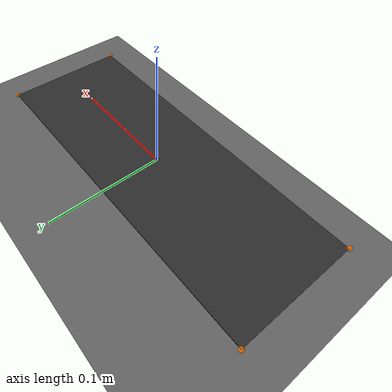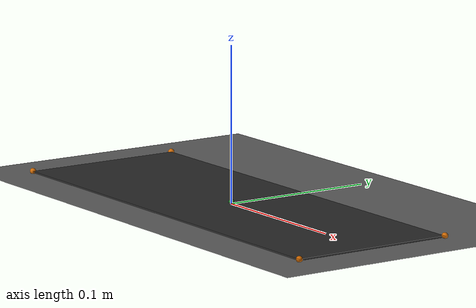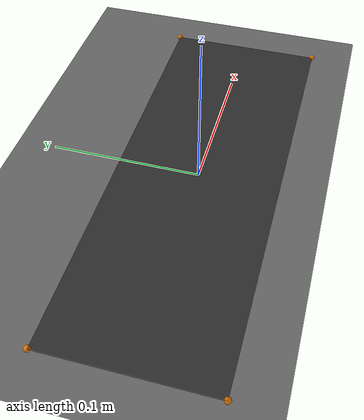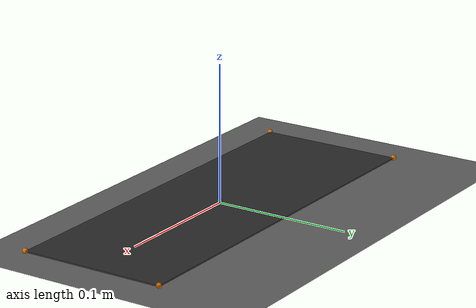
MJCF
<mujoco model="keyboard_sound_foam">

  <compiler angle="radian" autolimits="true"/>

  <option gravity="0 0 -9.81" timestep="0.002"/>

  <asset>
    <material name="pe_foam_dark"
              rgba="0.18 0.18 0.18 1"
              specular="0.05"
              shininess="0.1"
              reflectance="0.02"/>
  </asset>

  <worldbody>

    <!-- Static ground plane -->
    <geom name="ground" type="plane" size="1 1 0.1"
          pos="0 0 0"
          friction="0.8 0.005 0.0001"
          rgba="0.4 0.4 0.4 1"/>

    <body name="sound_foam" pos="0 0 0.0005">

      <inertial pos="0 0 0"
                mass="0.002"
                diaginertia="2.5e-6 2.1e-5 2.3e-5"/>

      <freejoint name="sound_foam_free"/>

      <!-- ── MAIN FOAM LAYER ───────────────────────────────────────────
           305mm × 107mm × 1.0mm
           Half-extents: 0.1525, 0.0535, 0.0005
      -->
      <geom name="sound_foam_body"
            type="box"
            size="0.1480 0.0535 0.0005"
            pos="0 0 0"
            material="pe_foam_dark"
            density="60"
            friction="0.5 0.005 0.0001"
            condim="4"
            priority="1"/>

      <!-- ══════════════════════════════════════════════════════════════
           REGISTRATION SITES
           ══════════════════════════════════════════════════════════════ -->

      <!-- Foam center reference -->
      <site name="foam_center"
            type="sphere"
            size="0.002"
            pos="0 0 0.0005"
            rgba="0 0.8 0.2 0.4"/>

      <!-- Corner references — align with PCB switch grid boundary -->
      <site name="foam_corner_FL"
            type="sphere"
            size="0.002"
            pos="-0.1480 -0.0535 0.0005"
            rgba="1 0.5 0 0.8"/>

      <site name="foam_corner_FR"
            type="sphere"
            size="0.002"
            pos="0.1480 -0.0535 0.0005"
            rgba="1 0.5 0 0.8"/>

      <site name="foam_corner_RL"
            type="sphere"
            size="0.002"
            pos="-0.1480 0.0535 0.0005"
            rgba="1 0.5 0 0.8"/>

      <site name="foam_corner_RR"
            type="sphere"
            size="0.002"
            pos="0.1480 0.0535 0.0005"
            rgba="1 0.5 0 0.8"/>

      <!-- Vacuum grasp site — top face center, clear of all edges -->
      <site name="vacuum_grasp"
            type="sphere"
            size="0.002"
            pos="0 0 0.0005"
            rgba="0 0.6 0.8 0.3"/>

    </body>

  </worldbody>

</mujoco>
